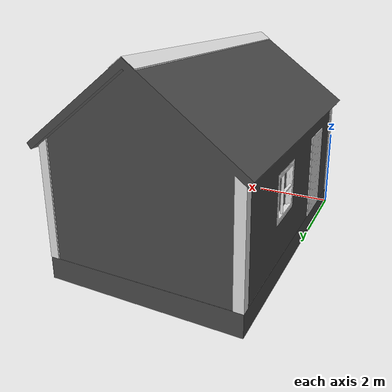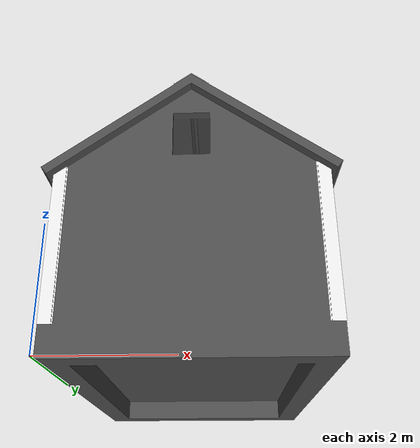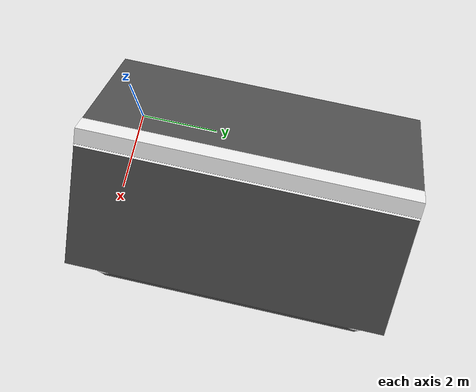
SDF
<?xml version="1.0" ?>
<sdf version="1.5">
  <model name="shed">
    <static>true</static>
    <link name="walls">
      <collision name="collision">
        <geometry>
          <mesh>
            <uri>model://urdf/cad/shed_outer.dae</uri>
            <scale>1 1 1</scale>
          </mesh>
        </geometry>
        <surface>
          <friction>
            <ode>
              <mu>100</mu>
              <mu2>50</mu2>
            </ode>
          </friction>
        </surface>
      </collision>
      <visual name="visual">
        <cast_shadows>false</cast_shadows>
        <geometry>
          <mesh>
            <uri>model://urdf/cad/shed_outer.dae</uri>
            <scale>1 1 1</scale>
          </mesh>
        </geometry>
        <material>
          <script>
            <uri>model://urdf/gazebo.material</uri>
            <name>Gazebo/DarkGrey</name>
          </script>
        </material>
      </visual>
    </link>
    <link name="edges">
      <pose frame=''>0 0 0 0 -0 0</pose>
      <collision name="collision">
        <geometry>
          <mesh>
            <uri>model://urdf/cad/shed_edges.dae</uri>
            <scale>1 1 1</scale>
          </mesh>
        </geometry>
        <surface>
          <friction>
            <ode>
              <mu>100</mu>
              <mu2>50</mu2>
            </ode>
          </friction>
        </surface>
      </collision>
      <visual name="visual">
        <cast_shadows>false</cast_shadows>
        <geometry>
          <mesh>
            <uri>model://urdf/cad/shed_edges.dae</uri>
            <scale>1 1 1</scale>
          </mesh>
        </geometry>
        <material>
          <script>
            <uri>model://urdf/gazebo.material</uri>
            <name>Gazebo/White</name>
          </script>
        </material>
      </visual>
    </link>
  </model>
</sdf>
